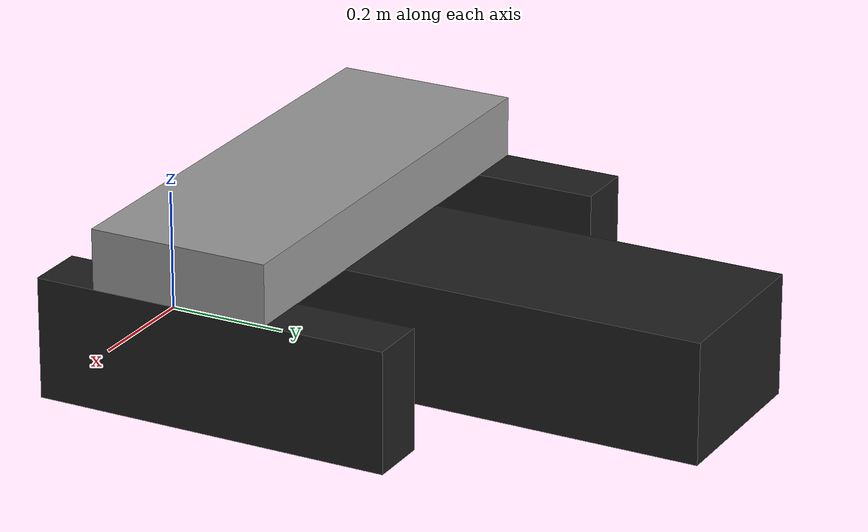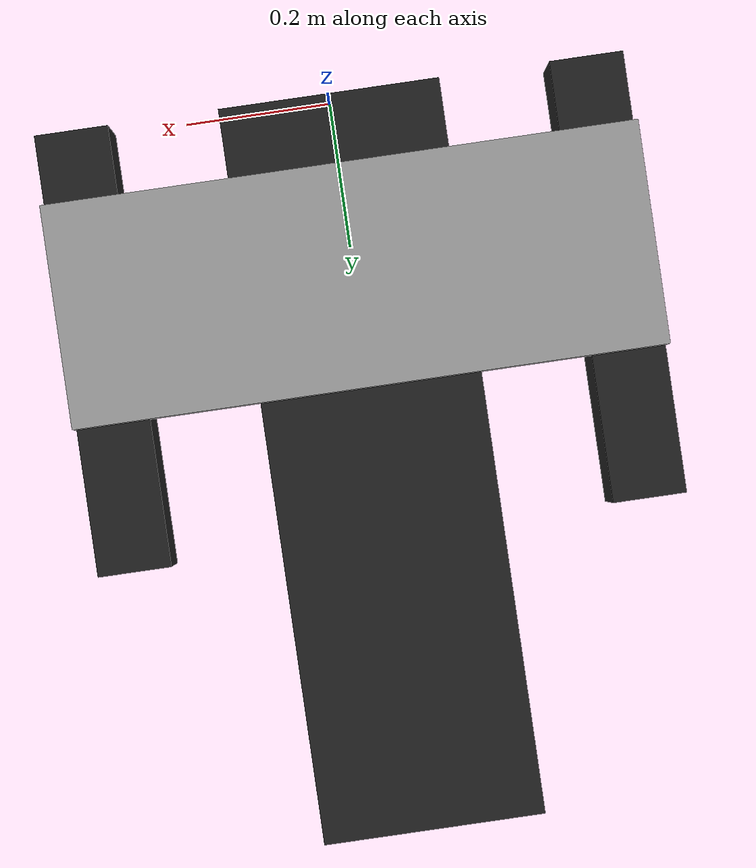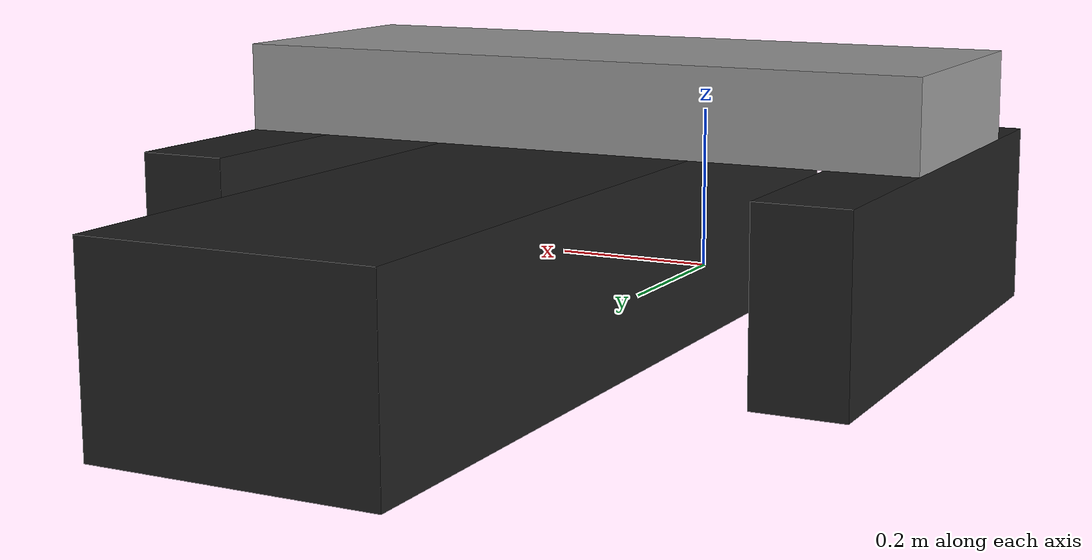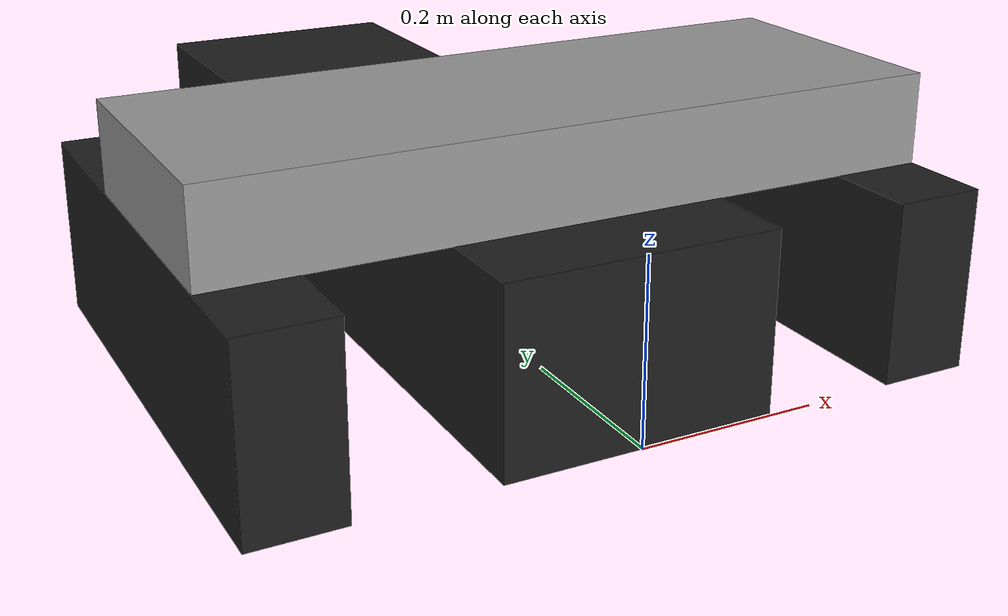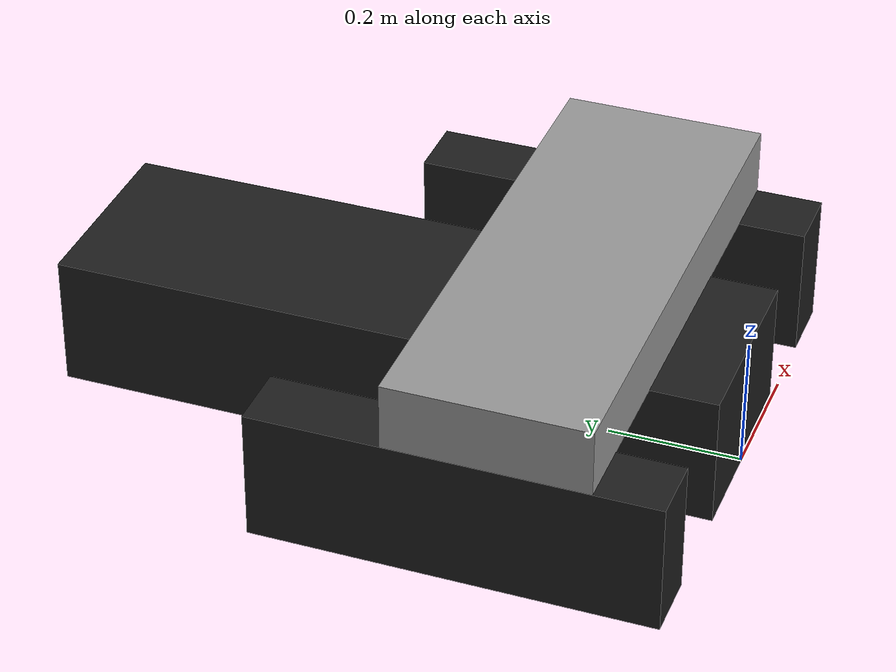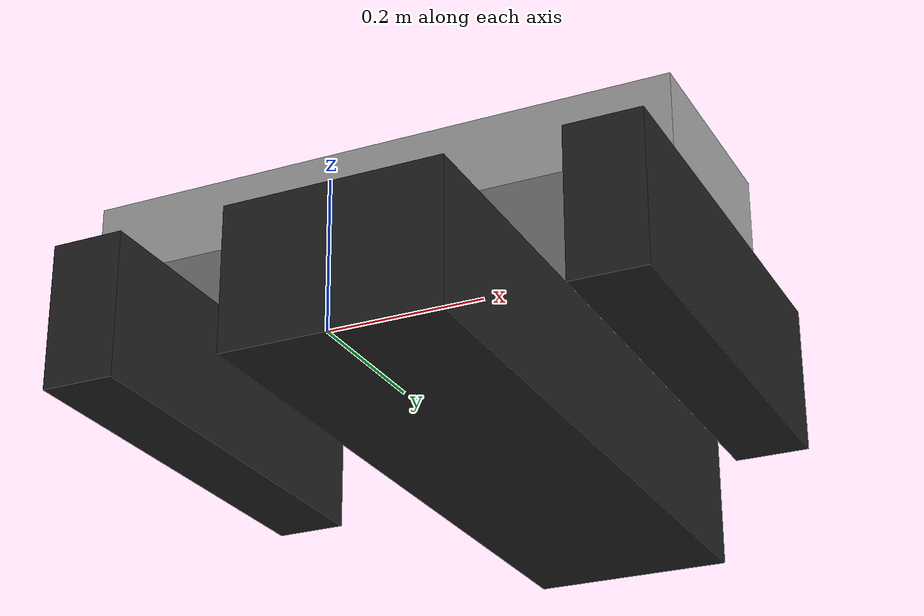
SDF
<?xml version='1.0'?>
<sdf version='1.4'>
  <model name="RoboBoat">
    <static>false</static>

    <link name='link'>

      <inertial>
        <pose>0 0 0 0 0 0</pose>
        <inertia>
          <ixx>1</ixx>
          <ixy>0</ixy>
          <ixz>0</ixz>
          <iyy>1</iyy>
          <iyz>0</iyz>
          <izz>1</izz>
        </inertia>
        <mass>1</mass>
      </inertial>

      <!---Define Visual and Collision Elements--->
      <collision name='hull_col'>
        <pose>0 0.5 0.1 0 0 0</pose>
        <geometry>
          <box>
            <size>0.3 1.0 0.2</size>
          </box>
        </geometry>
      </collision>
      <visual name='hull_vis'>
        <pose>0 0.5 0.1 0 0 0</pose>
        <geometry>
          <box>
            <size>0.3 1.0 0.2</size>
          </box>
        </geometry>
        <material>
          <script>
            <uri>file://media/materials/scripts/gazebo.material</uri>
            <name>Gazebo/Black</name>
          </script>
        </material>
      </visual>

      <collision name='top_col'>
        <pose>0 0.25 0.25 0 0 0</pose>
        <geometry>
          <box>
            <size>0.8 0.3 0.1</size>
          </box>
        </geometry>
      </collision>
      <visual name='top_vis'>
        <pose>0 0.25 0.25 0 0 0</pose>
        <geometry>
          <box>
            <size>0.8 0.3 0.1</size>
          </box>
        </geometry>
        <material>
          <script>
            <uri>file://media/materials/scripts/gazebo.material</uri>
            <name>Gazebo/Grey</name>
          </script>
        </material>
      </visual>

      <collision name='left_col'>
        <pose>-0.35 0.3 0.1 0 0 0</pose>
        <geometry>
          <box>
            <size>0.1 0.6 0.2</size>
          </box>
        </geometry>
      </collision>
      <visual name='left_vis'>
        <pose>-0.35 0.3 0.1 0 0 0</pose>
        <geometry>
          <box>
            <size>0.1 0.6 0.2</size>
          </box>
        </geometry>
        <material>
          <script>
            <uri>file://media/materials/scripts/gazebo.material</uri>
            <name>Gazebo/Black</name>
          </script>
        </material>
      </visual>

      <collision name='right_col'>
        <pose>0.35 0.3 0.1 0 0 0</pose>
        <geometry>
          <box>
            <size>0.1 0.6 0.2</size>
          </box>
        </geometry>
      </collision>
      <visual name='right_vis'>
        <pose>0.35 0.3 0.1 0 0 0</pose>
        <geometry>
          <box>
            <size>0.1 0.6 0.2</size>
          </box>
        </geometry>
        <material>
          <script>
            <uri>file://media/materials/scripts/gazebo.material</uri>
            <name>Gazebo/Black</name>
          </script>
        </material>
      </visual>

      <!---Add Sensors--->

      <sensor name="LIDAR" type="ray">

        <pose>0 0.8 0.25 0 0 1.57079633</pose>

        <always_on>1</always_on>
        <visualize>1</visualize>

        <topic>laser_data</topic>
        <update_rate>10</update_rate>

        <ray>
          <scan>
            <horizontal>
              <samples>162</samples>
              <resolution>1.000000</resolution>
              <min_angle>-2.268928</min_angle>
              <max_angle>2.268928</max_angle>
            </horizontal>
          </scan>
          <range>
            <min>0.5</min>
            <max>20</max>
            <resolution>0.01</resolution>
          </range>
          <noise>
	        <type>gaussian</type>
            <mean>0</mean>
            <stddev>0.05</stddev>
          </noise>
        </ray>

      </sensor>

      <sensor name="IMU" type="imu">

        <pose>0 0.25 0.25 0 0 0</pose>

        <always_on>1</always_on>
        <visualize>true</visualize>

        <topic>__default_topic__</topic>
        <update_rate>50</update_rate>

        <imu>
          <noise>
            <type>gaussian</type>
            <rate>
              <mean>0.0</mean>
              <stddev>2e-4</stddev>
              <bias_mean>0.0000075</bias_mean>
              <bias_stddev>0.0000008</bias_stddev>
            </rate>
            <accel>
              <mean>0.0</mean>
              <stddev>1.7e-2</stddev>
              <bias_mean>0.1</bias_mean>
              <bias_stddev>0.001</bias_stddev>
            </accel>
          </noise>
        </imu>

      </sensor>

      <sensor name="GPS" type="gps">

        <pose>0 0.5 0.1 0 0 0</pose>

        <always_on>1</always_on>
        <visualize>0</visualize>

        <topic>gps_data</topic>
        <update_rate>10</update_rate>

        <gps>
          <position_sensing>
            <horizontal>
              <noise type="gaussian">
                <mean>0</mean>
                <stddev>1.5</stddev>
              </noise>
            </horizontal>
            <vertical>
              <noise type="gaussian">
                <mean>0</mean>
                <stddev>3.0</stddev>
              </noise>
            </vertical>
          </position_sensing>
          <velocity_sensing>
            <horizontal>
              <noise type="gaussian">
                <mean>0</mean>
                <stddev>0.005</stddev>
              </noise>
            </horizontal>
            <vertical>
              <noise type="gaussian">
                <mean>0</mean>
                <stddev>0.01</stddev>
              </noise>
            </vertical>
          </velocity_sensing>
        </gps>
      </sensor>

    </link>
    	<!--Add Controller Script-->

	<plugin name="subsumption_arch" filename="libsubsumption_arch.so">
		<gain_avoid>5.0</gain_avoid>
		<gain_boundary>1.0</gain_boundary>
		<gain_noise>0.1</gain_noise>
		<gain_goal>1.0</gain_goal>

		<max_speed>3.6</max_speed>
		<lidar>LIDAR</lidar>
		<imu>IMU</imu>
		<gps>GPS</gps>

                <output>SimulationOutput.txt</output>
	</plugin>

  </model>
</sdf>
